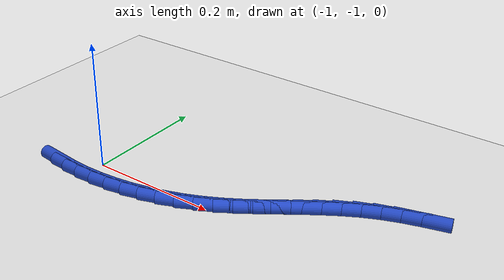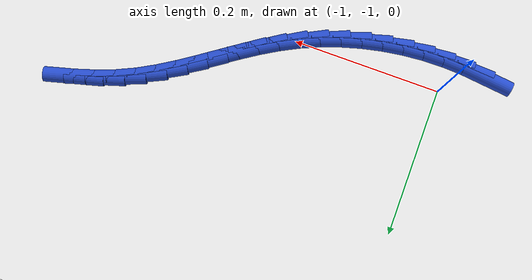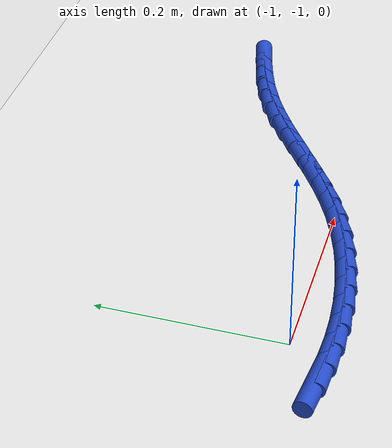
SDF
<sdf version="1.6">
 <world name="default">
  <model name="ground_plane">
   <static>1</static>
   <link name="link">
    <collision name="collision">
     <geometry><plane><normal>0 0 1</normal><size>100 100</size></plane></geometry>
     <surface><friction><ode><mu>100</mu><mu2>50</mu2></ode></friction></surface>
    </collision>
    <visual name="visual">
     <cast_shadows>0</cast_shadows>
     <geometry><plane><normal>0 0 1</normal><size>100 100</size></plane></geometry>
     <material>
      <script><uri>file://media/materials/scripts/gazebo.material</uri><name>Gazebo/WhiteGlow</name></script>
     </material>
    </visual>
   </link>
  </model>
  <model name="line">
   <link name="link_180">
    <pose>-1.0487445063383742 -1.0371702500824822 0.01 0 1.57 -0.1100183488596858</pose>
    <collision name="collision">
     <geometry><cylinder><radius>0.01</radius><length>0.08</length></cylinder></geometry>
    </collision>
    <visual name="visual">
     <material>
      <script><name>Gazebo/Blue</name><uri>file://media/materials/scripts/gazebo.material</uri></script>
     </material>
     <geometry><cylinder><radius>0.01</radius><length>0.08</length></cylinder></geometry>
    </visual>
   </link>
   <link name="link_181">
    <pose>-1.0214141116613908 -1.0401892856585528 0.01 0 1.57 -0.04326253861179106</pose>
    <collision name="collision">
     <geometry><cylinder><radius>0.01</radius><length>0.08</length></cylinder></geometry>
    </collision>
    <visual name="visual">
     <material>
      <script><name>Gazebo/Blue</name><uri>file://media/materials/scripts/gazebo.material</uri></script>
     </material>
     <geometry><cylinder><radius>0.01</radius><length>0.08</length></cylinder></geometry>
    </visual>
   </link>
   <link name="link_182">
    <pose>-0.9937754505238926 -1.0413857508499424 0.01 0 1.57 0.021809606854796795</pose>
    <collision name="collision">
     <geometry><cylinder><radius>0.01</radius><length>0.08</length></cylinder></geometry>
    </collision>
    <visual name="visual">
     <material>
      <script><name>Gazebo/Blue</name><uri>file://media/materials/scripts/gazebo.material</uri></script>
     </material>
     <geometry><cylinder><radius>0.01</radius><length>0.08</length></cylinder></geometry>
    </visual>
   </link>
   <link name="link_183">
    <pose>-0.9659848579327693 -1.040779552833716 0.01 0 1.57 0.0857635174381439</pose>
    <collision name="collision">
     <geometry><cylinder><radius>0.01</radius><length>0.08</length></cylinder></geometry>
    </collision>
    <visual name="visual">
     <material>
      <script><name>Gazebo/Blue</name><uri>file://media/materials/scripts/gazebo.material</uri></script>
     </material>
     <geometry><cylinder><radius>0.01</radius><length>0.08</length></cylinder></geometry>
    </visual>
   </link>
   <link name="link_184">
    <pose>-0.9381987105520774 -1.0383906551400328 0.01 0 1.57 0.14916731221128823</pose>
    <collision name="collision">
     <geometry><cylinder><radius>0.01</radius><length>0.08</length></cylinder></geometry>
    </collision>
    <visual name="visual">
     <material>
      <script><name>Gazebo/Blue</name><uri>file://media/materials/scripts/gazebo.material</uri></script>
     </material>
     <geometry><cylinder><radius>0.01</radius><length>0.08</length></cylinder></geometry>
    </visual>
   </link>
   <link name="link_185">
    <pose>-0.9105733850458735 -1.0342390212990529 0.01 0 1.57 0.21258661710060314</pose>
    <collision name="collision">
     <geometry><cylinder><radius>0.01</radius><length>0.08</length></cylinder></geometry>
    </collision>
    <visual name="visual">
     <material>
      <script><name>Gazebo/Blue</name><uri>file://media/materials/scripts/gazebo.material</uri></script>
     </material>
     <geometry><cylinder><radius>0.01</radius><length>0.08</length></cylinder></geometry>
    </visual>
   </link>
   <link name="link_186">
    <pose>-0.8832652580782155 -1.0283446148409352 0.01 0 1.57 0.276583090487247</pose>
    <collision name="collision">
     <geometry><cylinder><radius>0.01</radius><length>0.08</length></cylinder></geometry>
    </collision>
    <visual name="visual">
     <material>
      <script><name>Gazebo/Blue</name><uri>file://media/materials/scripts/gazebo.material</uri></script>
     </material>
     <geometry><cylinder><radius>0.01</radius><length>0.08</length></cylinder></geometry>
    </visual>
   </link>
   <link name="link_187">
    <pose>-0.85643070631316 -1.0207273992958399 0.01 0 1.57 0.3417127190537393</pose>
    <collision name="collision">
     <geometry><cylinder><radius>0.01</radius><length>0.08</length></cylinder></geometry>
    </collision>
    <visual name="visual">
     <material>
      <script><name>Gazebo/Blue</name><uri>file://media/materials/scripts/gazebo.material</uri></script>
     </material>
     <geometry><cylinder><radius>0.01</radius><length>0.08</length></cylinder></geometry>
    </visual>
   </link>
   <link name="link_188">
    <pose>-0.8302261064147634 -1.011407338193926 0.01 0 1.57 0.40852218501380044</pose>
    <collision name="collision">
     <geometry><cylinder><radius>0.01</radius><length>0.08</length></cylinder></geometry>
    </collision>
    <visual name="visual">
     <material>
      <script><name>Gazebo/Blue</name><uri>file://media/materials/scripts/gazebo.material</uri></script>
     </material>
     <geometry><cylinder><radius>0.01</radius><length>0.08</length></cylinder></geometry>
    </visual>
   </link>
   <link name="link_189">
    <pose>-0.8048078350470828 -1.0004043950653534 0.01 0 1.57 0.4771814543787058</pose>
    <collision name="collision">
     <geometry><cylinder><radius>0.01</radius><length>0.08</length></cylinder></geometry>
    </collision>
    <visual name="visual">
     <material>
      <script><name>Gazebo/Blue</name><uri>file://media/materials/scripts/gazebo.material</uri></script>
     </material>
     <geometry><cylinder><radius>0.01</radius><length>0.08</length></cylinder></geometry>
    </visual>
   </link>
   <link name="link_190">
    <pose>-0.7803249926905887 -0.9877459426532589 0.01 0 1.57 0.5382979957108691</pose>
    <collision name="collision">
     <geometry><cylinder><radius>0.01</radius><length>0.08</length></cylinder></geometry>
    </collision>
    <visual name="visual">
     <material>
      <script><name>Gazebo/Blue</name><uri>file://media/materials/scripts/gazebo.material</uri></script>
     </material>
     <geometry><cylinder><radius>0.01</radius><length>0.08</length></cylinder></geometry>
    </visual>
   </link>
   <link name="link_191">
    <pose>-0.756731666110283 -0.9736579328232463 0.01 0 1.57 0.5809857361245804</pose>
    <collision name="collision">
     <geometry><cylinder><radius>0.01</radius><length>0.08</length></cylinder></geometry>
    </collision>
    <visual name="visual">
     <material>
      <script><name>Gazebo/Blue</name><uri>file://media/materials/scripts/gazebo.material</uri></script>
     </material>
     <geometry><cylinder><radius>0.01</radius><length>0.08</length></cylinder></geometry>
    </visual>
   </link>
   <link name="link_192">
    <pose>-0.7337701978848922 -0.9585819329149237 0.01 0 1.57 0.604553858491313</pose>
    <collision name="collision">
     <geometry><cylinder><radius>0.01</radius><length>0.08</length></cylinder></geometry>
    </collision>
    <visual name="visual">
     <material>
      <script><name>Gazebo/Blue</name><uri>file://media/materials/scripts/gazebo.material</uri></script>
     </material>
     <geometry><cylinder><radius>0.01</radius><length>0.08</length></cylinder></geometry>
    </visual>
   </link>
   <link name="link_193">
    <pose>-0.7111723012075052 -0.942970333989029 0.01 0 1.57 0.6090232722469267</pose>
    <collision name="collision">
     <geometry><cylinder><radius>0.01</radius><length>0.08</length></cylinder></geometry>
    </collision>
    <visual name="visual">
     <material>
      <script><name>Gazebo/Blue</name><uri>file://media/materials/scripts/gazebo.material</uri></script>
     </material>
     <geometry><cylinder><radius>0.01</radius><length>0.08</length></cylinder></geometry>
    </visual>
   </link>
   <link name="link_194">
    <pose>-0.6886696892712085 -0.9272755271062986 0.01 0 1.57 0.5943427642849941</pose>
    <collision name="collision">
     <geometry><cylinder><radius>0.01</radius><length>0.08</length></cylinder></geometry>
    </collision>
    <visual name="visual">
     <material>
      <script><name>Gazebo/Blue</name><uri>file://media/materials/scripts/gazebo.material</uri></script>
     </material>
     <geometry><cylinder><radius>0.01</radius><length>0.08</length></cylinder></geometry>
    </visual>
   </link>
   <link name="link_195">
    <pose>-0.66599407526909 -0.9119499033274701 0.01 0 1.57 0.5603389640896994</pose>
    <collision name="collision">
     <geometry><cylinder><radius>0.01</radius><length>0.08</length></cylinder></geometry>
    </collision>
    <visual name="visual">
     <material>
      <script><name>Gazebo/Blue</name><uri>file://media/materials/scripts/gazebo.material</uri></script>
     </material>
     <geometry><cylinder><radius>0.01</radius><length>0.08</length></cylinder></geometry>
    </visual>
   </link>
   <link name="link_196">
    <pose>-0.6428771723942368 -0.8974458537132801 0.01 0 1.57 0.5068788474146015</pose>
    <collision name="collision">
     <geometry><cylinder><radius>0.01</radius><length>0.08</length></cylinder></geometry>
    </collision>
    <visual name="visual">
     <material>
      <script><name>Gazebo/Blue</name><uri>file://media/materials/scripts/gazebo.material</uri></script>
     </material>
     <geometry><cylinder><radius>0.01</radius><length>0.08</length></cylinder></geometry>
    </visual>
   </link>
   <link name="link_197">
    <pose>-0.6190506938397367 -0.8842157693244662 0.01 0 1.57 0.4345729416544788</pose>
    <collision name="collision">
     <geometry><cylinder><radius>0.01</radius><length>0.08</length></cylinder></geometry>
    </collision>
    <visual name="visual">
     <material>
      <script><name>Gazebo/Blue</name><uri>file://media/materials/scripts/gazebo.material</uri></script>
     </material>
     <geometry><cylinder><radius>0.01</radius><length>0.08</length></cylinder></geometry>
    </visual>
   </link>
   <link name="link_198">
    <pose>-0.5942509571208651 -0.8727045380831305 0.01 0 1.57 0.35899845524867885</pose>
    <collision name="collision">
     <geometry><cylinder><radius>0.01</radius><length>0.08</length></cylinder></geometry>
    </collision>
    <visual name="visual">
     <material>
      <script><name>Gazebo/Blue</name><uri>file://media/materials/scripts/gazebo.material</uri></script>
     </material>
     <geometry><cylinder><radius>0.01</radius><length>0.08</length></cylinder></geometry>
    </visual>
   </link>
   <link name="link_199">
    <pose>-0.5684252831149805 -0.8630131998022404 0.01 0 1.57 0.3006301805654172</pose>
    <collision name="collision">
     <geometry><cylinder><radius>0.01</radius><length>0.08</length></cylinder></geometry>
    </collision>
    <visual name="visual">
     <material>
      <script><name>Gazebo/Blue</name><uri>file://media/materials/scripts/gazebo.material</uri></script>
     </material>
     <geometry><cylinder><radius>0.01</radius><length>0.08</length></cylinder></geometry>
    </visual>
   </link>
   <link name="link_200">
    <pose>-0.541815199532604 -0.8547633589801842 0.01 0 1.57 0.2601663902392976</pose>
    <collision name="collision">
     <geometry><cylinder><radius>0.01</radius><length>0.08</length></cylinder></geometry>
    </collision>
    <visual name="visual">
     <material>
      <script><name>Gazebo/Blue</name><uri>file://media/materials/scripts/gazebo.material</uri></script>
     </material>
     <geometry><cylinder><radius>0.01</radius><length>0.08</length></cylinder></geometry>
    </visual>
   </link>
  </model>
 </world>
</sdf>
